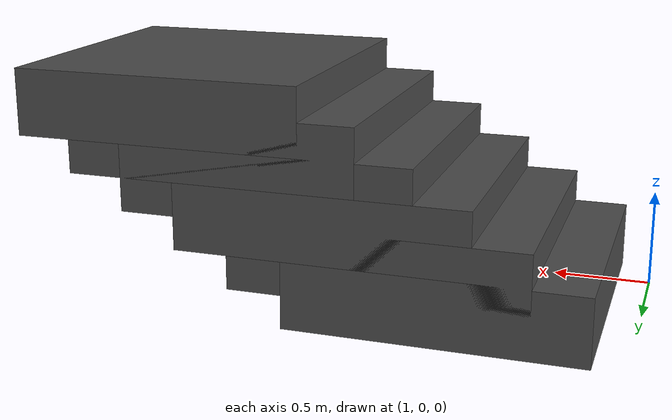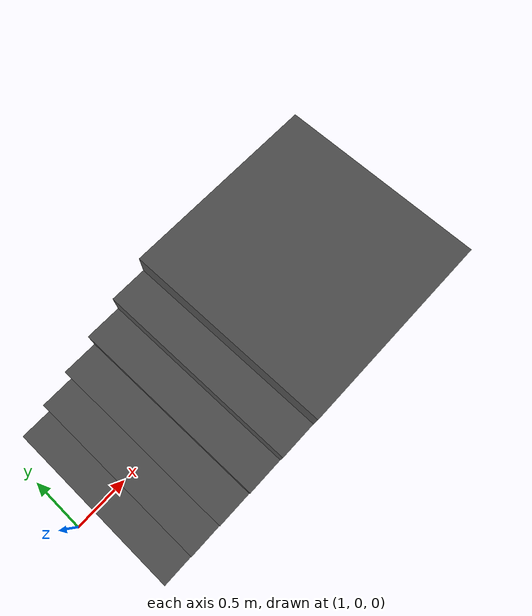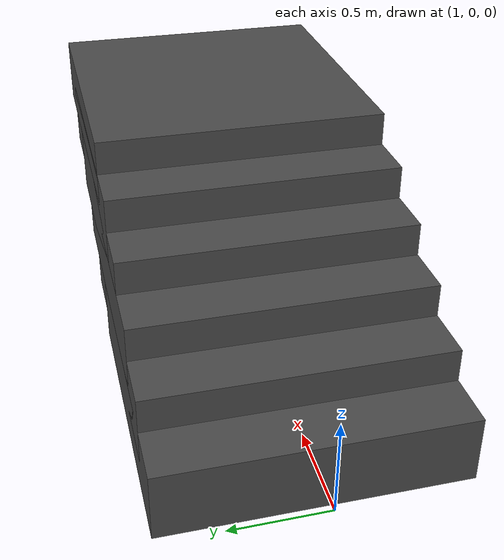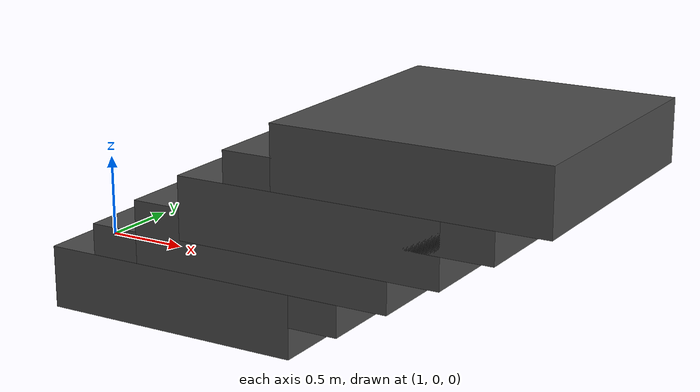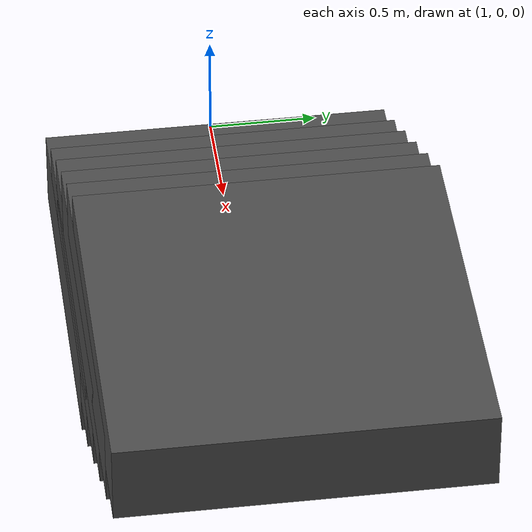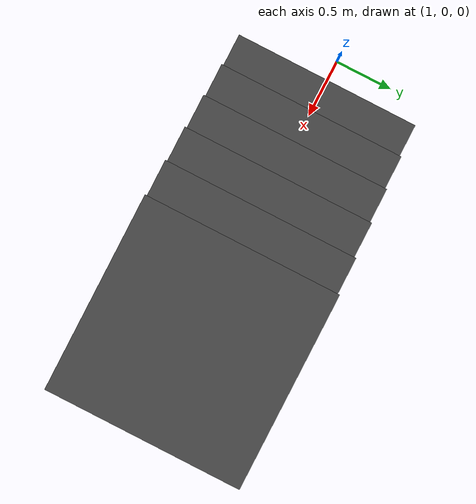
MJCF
<mujoco>
  <worldbody>
    <light diffuse=".5 .5 .5" pos="2 0 0.075" dir="0 0 -1"/>
    <body pos="2 0 0">
      <geom type="box" size=".8 .8 0.185" rgba="0.3 0.3 0.3 1"/>
    </body>
  </worldbody>

  <worldbody>
    <light diffuse=".5 .5 .5" pos="3 0 0.3" dir="0 0 -1"/>
    <body pos="2.3 0 0.185">
      <geom type="box" size=".8 .8 0.185" rgba="0.3 0.3 0.3 1"/>
    </body>
  </worldbody>

  <worldbody>
    <light diffuse=".5 .5 .5" pos="4 0 0.5" dir="0 0 -1"/>
    <body pos="2.6 0 0.37">
      <geom type="box" size=".8 .8 0.185" rgba="0.3 0.3 0.3 1"/>
    </body>
  </worldbody>

  <worldbody>
    <light diffuse=".5 .5 .5" pos="5 0 0.5" dir="0 0 -1"/>
    <body pos="2.9 0 0.555">
      <geom type="box" size=".8 .8 0.185" rgba="0.3 0.3 0.3 1"/>
    </body>
  </worldbody>

  <worldbody>
    <light diffuse=".5 .5 .5" pos="6 0 0.5" dir="0 0 -1"/>
    <body pos="3.2 0 0.74">
      <geom type="box" size=".8 .8 0.185" rgba="0.3 0.3 0.3 1"/>
    </body>
  </worldbody>

  <worldbody>
    <light diffuse=".5 .5 .5" pos="7 0 5" dir="0 0 -1"/>
    <body pos="3.5 0 0.925">
      <geom type="box" size=".8 .8 0.185" rgba="0.3 0.3 0.3 1"/>
    </body>
  </worldbody>
</mujoco>
